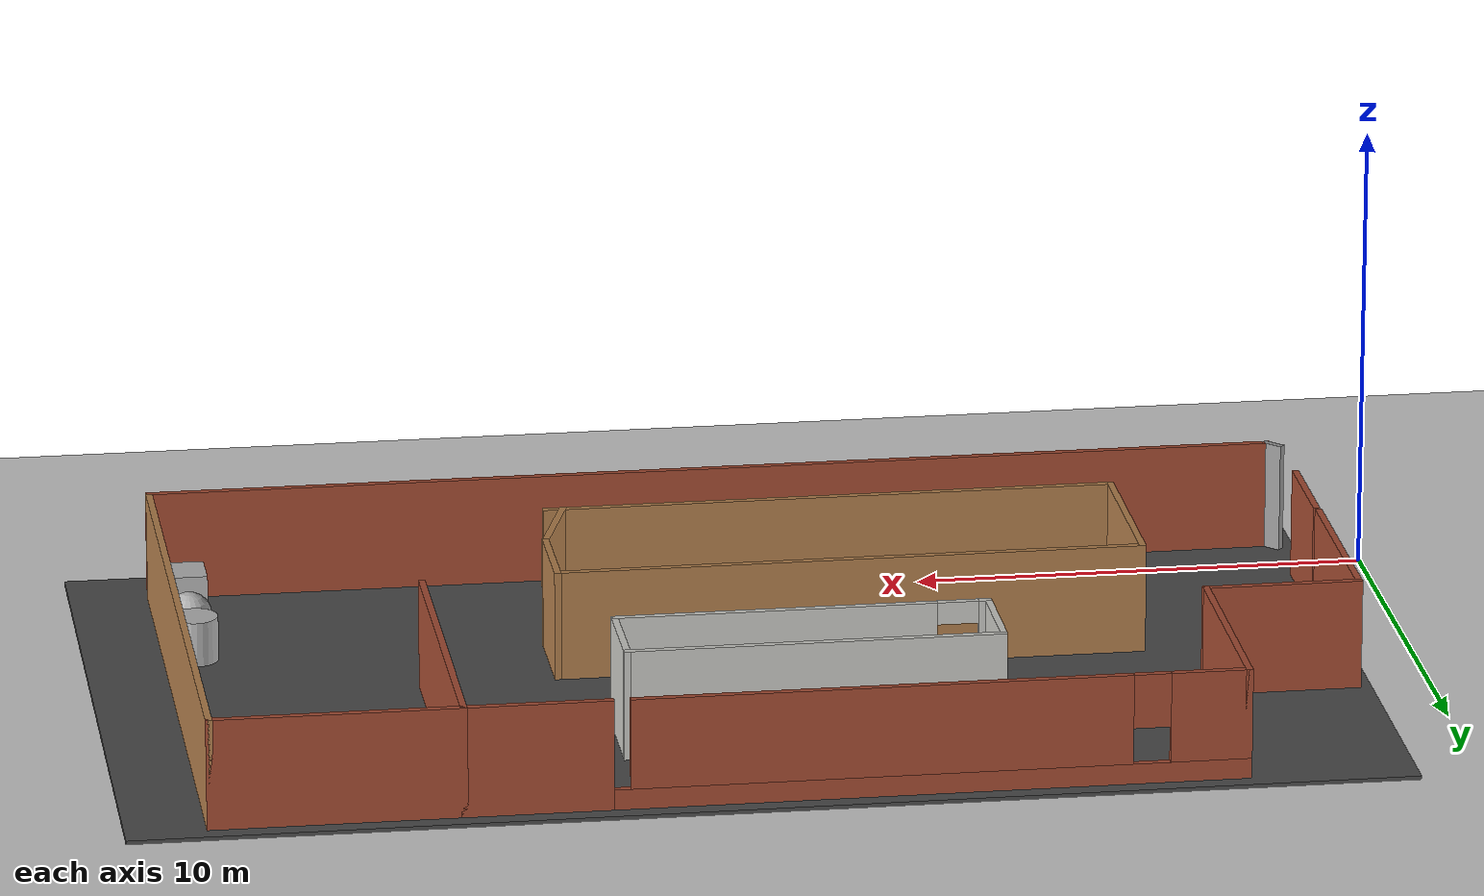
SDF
<sdf version="1.6">
 <world name="default">
  <light name="sun" type="directional">
   <pose>0 0 10 0 -0 0</pose>
   <diffuse>0.8 0.8 0.8 1</diffuse>
   <specular>0.1 0.1 0.1 1</specular>
   <attenuation>
    <range>1000</range>
    <constant>0.9</constant>
    <linear>0.01</linear>
    <quadratic>0.001</quadratic>
   </attenuation>
   <direction>-0.5 0.5 -1</direction>
  </light>
  <model name="ground_plane">
   <static>1</static>
   <link name="link">
    <collision name="collision">
     <geometry><plane><normal>0 0 1</normal><size>100 100</size></plane></geometry>
     <surface><friction><ode><mu>100</mu><mu2>50</mu2></ode></friction></surface>
    </collision>
    <visual name="visual">
     <cast_shadows>0</cast_shadows>
     <geometry><plane><normal>0 0 1</normal><size>100 100</size></plane></geometry>
     <material>
      <script><uri>file://media/materials/scripts/gazebo.material</uri><name>Gazebo/Grey</name></script>
     </material>
    </visual>
   </link>
  </model>
  <gravity>0 0 -9.8</gravity>
  <magnetic_field>6e-06 2.3e-05 -4.2e-05</magnetic_field>
  <atmosphere type="adiabatic"/>
  <physics name="default_physics" default="0" type="ode">
   <max_step_size>0.001</max_step_size>
   <real_time_factor>1</real_time_factor>
   <real_time_update_rate>1000</real_time_update_rate>
  </physics>
  <scene><ambient>0.4 0.4 0.4 1</ambient><background>0.7 0.7 0.7 1</background><shadows>1</shadows></scene>
  <spherical_coordinates>
   <surface_model>EARTH_WGS84</surface_model>
   <latitude_deg>0</latitude_deg>
   <longitude_deg>0</longitude_deg>
   <elevation>0</elevation>
   <heading_deg>0</heading_deg>
  </spherical_coordinates>
  <model name="building1">
   <pose>14.3259 5.95802 0 0 -0 0</pose>
   <link name="Wall_0">
    <collision name="Wall_0_Collision">
     <geometry><box><size>8.25 0.15 2.5</size></box></geometry>
     <pose>0 0 1.25 0 -0 0</pose>
    </collision>
    <visual name="Wall_0_Visual">
     <pose>0 0 1.25 0 -0 0</pose>
     <geometry><box><size>8.25 0.15 2.5</size></box></geometry>
     <material>
      <script><uri>file://media/materials/scripts/gazebo.material</uri><name>Gazebo/CeilingTiled</name></script>
      <ambient>1 1 1 1</ambient>
     </material>
    </visual>
    <pose>-0.524089 4.29418 0 0 -0 3.14159</pose>
   </link>
   <link name="Wall_1">
    <collision name="Wall_1_Collision">
     <geometry><box><size>2.25 0.15 2.5</size></box></geometry>
     <pose>0 0 1.25 0 -0 0</pose>
    </collision>
    <visual name="Wall_1_Visual">
     <pose>0 0 1.25 0 -0 0</pose>
     <geometry><box><size>2.25 0.15 2.5</size></box></geometry>
     <material>
      <script><uri>file://media/materials/scripts/gazebo.material</uri><name>Gazebo/CeilingTiled</name></script>
      <ambient>1 1 1 1</ambient>
     </material>
    </visual>
    <pose>-4.57409 3.24418 0 0 0 -1.5708</pose>
   </link>
   <link name="Wall_10">
    <collision name="Wall_10_Collision">
     <geometry><box><size>3.25 0.15 2.5</size></box></geometry>
     <pose>0 0 1.25 0 -0 0</pose>
    </collision>
    <visual name="Wall_10_Visual">
     <pose>0 0 1.25 0 -0 0</pose>
     <geometry><box><size>3.25 0.15 2.5</size></box></geometry>
     <material>
      <script><uri>file://media/materials/scripts/gazebo.material</uri><name>Gazebo/Bricks</name></script>
      <ambient>1 1 1 1</ambient>
     </material>
    </visual>
    <pose>5.8 7.19053 0 0 -0 0</pose>
   </link>
   <link name="Wall_11">
    <collision name="Wall_11_Collision">
     <geometry><box><size>8 0.15 2.5</size></box></geometry>
     <pose>0 0 1.25 0 -0 0</pose>
    </collision>
    <visual name="Wall_11_Visual">
     <pose>0 0 1.25 0 -0 0</pose>
     <geometry><box><size>8 0.15 2.5</size></box></geometry>
     <material>
      <script><uri>file://media/materials/scripts/gazebo.material</uri><name>Gazebo/Bricks</name></script>
      <ambient>1 1 1 1</ambient>
     </material>
    </visual>
    <pose>7.35 3.26553 0 0 0 -1.5708</pose>
   </link>
   <link name="Wall_13">
    <collision name="Wall_13_Collision">
     <geometry><box><size>13 0.15 2.5</size></box></geometry>
     <pose>0 0 1.25 0 -0 0</pose>
    </collision>
    <visual name="Wall_13_Visual">
     <pose>0 0 1.25 0 -0 0</pose>
     <geometry><box><size>13 0.15 2.5</size></box></geometry>
     <material>
      <script><uri>file://media/materials/scripts/gazebo.material</uri><name>Gazebo/Wood</name></script>
      <ambient>1 1 1 1</ambient>
     </material>
    </visual>
    <pose>-2.03974 -0.810328 0 0 -0 3.14159</pose>
   </link>
   <link name="Wall_14">
    <collision name="Wall_14_Collision">
     <geometry><box><size>4.25 0.15 2.5</size></box></geometry>
     <pose>0 0 1.25 0 -0 0</pose>
    </collision>
    <visual name="Wall_14_Visual">
     <pose>0 0 1.25 0 -0 0</pose>
     <geometry><box><size>4.25 0.15 2.5</size></box></geometry>
     <material>
      <script><uri>file://media/materials/scripts/gazebo.material</uri><name>Gazebo/Wood</name></script>
      <ambient>1 1 1 1</ambient>
     </material>
    </visual>
    <pose>-8.46474 -2.86033 0 0 0 -1.5708</pose>
   </link>
   <link name="Wall_15">
    <collision name="Wall_15_Collision">
     <geometry><box><size>12.75 0.15 2.5</size></box></geometry>
     <pose>0 0 1.25 0 -0 0</pose>
    </collision>
    <visual name="Wall_15_Visual">
     <pose>0 0 1.25 0 -0 0</pose>
     <geometry><box><size>12.75 0.15 2.5</size></box></geometry>
     <material>
      <script><uri>file://media/materials/scripts/gazebo.material</uri><name>Gazebo/Wood</name></script>
      <ambient>1 1 1 1</ambient>
     </material>
    </visual>
    <pose>-2.16474 -4.91033 0 0 -0 0</pose>
   </link>
   <link name="Wall_17">
    <collision name="Wall_17_Collision">
     <geometry><box><size>2.25 0.15 2.5</size></box></geometry>
     <pose>0 0 1.25 0 -0 0</pose>
    </collision>
    <visual name="Wall_17_Visual">
     <pose>0 0 1.25 0 -0 0</pose>
     <geometry><box><size>2.25 0.15 2.5</size></box></geometry>
     <material>
      <script><uri>file://media/materials/scripts/gazebo.material</uri><name>Gazebo/Wood</name></script>
      <ambient>1 1 1 1</ambient>
     </material>
    </visual>
    <pose>4.38526 -1.86033 0 0 0 -1.5708</pose>
   </link>
   <link name="Wall_19">
    <collision name="Wall_19_Collision">
     <geometry><box><size>5.5 0.15 2.5</size></box></geometry>
     <pose>0 0 1.25 0 -0 0</pose>
    </collision>
    <visual name="Wall_19_Visual">
     <pose>0 0 1.25 0 -0 0</pose>
     <geometry><box><size>5.5 0.15 2.5</size></box></geometry>
     <material>
      <script><uri>file://media/materials/scripts/gazebo.material</uri><name>Gazebo/Bricks</name></script>
      <ambient>1 1 1 1</ambient>
     </material>
    </visual>
    <pose>10.025 7.19053 0 0 -0 0</pose>
   </link>
   <link name="Wall_2">
    <pose>-0.524089 2.19418 0 0 -0 0</pose>
    <visual name="Wall_2_Visual_0">
     <pose>-3.98181 0 1.25 0 -0 0</pose>
     <geometry><box><size>0.286391 0.15 2.5</size></box></geometry>
     <material>
      <script><uri>file://media/materials/scripts/gazebo.material</uri><name>Gazebo/CeilingTiled</name></script>
      <ambient>1 1 1 1</ambient>
     </material>
    </visual>
    <collision name="Wall_2_Collision_0">
     <geometry><box><size>0.286391 0.15 2.5</size></box></geometry>
     <pose>-3.98181 0 1.25 0 -0 0</pose>
    </collision>
    <visual name="Wall_2_Visual_1">
     <pose>0.593195 0 1.25 0 -0 0</pose>
     <geometry><box><size>7.06361 0.15 2.5</size></box></geometry>
     <material>
      <script><uri>file://media/materials/scripts/gazebo.material</uri><name>Gazebo/CeilingTiled</name></script>
      <ambient>1 1 1 1</ambient>
     </material>
    </visual>
    <collision name="Wall_2_Collision_1">
     <geometry><box><size>7.06361 0.15 2.5</size></box></geometry>
     <pose>0.593195 0 1.25 0 -0 0</pose>
    </collision>
    <visual name="Wall_2_Visual_2">
     <pose>-3.38861 0 2.25 0 -0 0</pose>
     <geometry><box><size>0.9 0.15 0.5</size></box></geometry>
     <material>
      <script><uri>file://media/materials/scripts/gazebo.material</uri><name>Gazebo/CeilingTiled</name></script>
      <ambient>1 1 1 1</ambient>
     </material>
    </visual>
    <collision name="Wall_2_Collision_2">
     <geometry><box><size>0.9 0.15 0.5</size></box></geometry>
     <pose>-3.38861 0 2.25 0 -0 0</pose>
    </collision>
   </link>
   <link name="Wall_20">
    <collision name="Wall_20_Collision">
     <geometry><box><size>14.5 0.15 2.5</size></box></geometry>
     <pose>0 0 1.25 0 -0 0</pose>
    </collision>
    <visual name="Wall_20_Visual">
     <pose>0 0 1.25 0 -0 0</pose>
     <geometry><box><size>14.5 0.15 2.5</size></box></geometry>
     <material>
      <script><uri>file://media/materials/scripts/gazebo.material</uri><name>Gazebo/Wood</name></script>
      <ambient>1 1 1 1</ambient>
     </material>
    </visual>
    <pose>12.7 0.015532 0 0 0 -1.5708</pose>
   </link>
   <link name="Wall_21">
    <collision name="Wall_21_Collision">
     <geometry><box><size>25.25 0.15 2.5</size></box></geometry>
     <pose>0 0 1.25 0 -0 0</pose>
    </collision>
    <visual name="Wall_21_Visual">
     <pose>0 0 1.25 0 -0 0</pose>
     <geometry><box><size>25.25 0.15 2.5</size></box></geometry>
     <material>
      <script><uri>file://media/materials/scripts/gazebo.material</uri><name>Gazebo/Bricks</name></script>
      <ambient>1 1 1 1</ambient>
     </material>
    </visual>
    <pose>0.15 -7.15947 0 0 -0 3.14159</pose>
   </link>
   <link name="Wall_22">
    <collision name="Wall_22_Collision">
     <geometry><box><size>0.5 0.15 2.5</size></box></geometry>
     <pose>0 0 1.25 0 -0 0</pose>
    </collision>
    <visual name="Wall_22_Visual">
     <pose>0 0 1.25 0 -0 0</pose>
     <geometry><box><size>0.5 0.15 2.5</size></box></geometry>
     <material>
      <script><uri>file://media/materials/scripts/gazebo.material</uri><name>Gazebo/Grey</name></script>
      <ambient>1 1 1 1</ambient>
     </material>
    </visual>
    <pose>-12.5237 -7.03572 0 0 -0 2.35619</pose>
   </link>
   <link name="Wall_24">
    <collision name="Wall_24_Collision">
     <geometry><box><size>2.27104 0.15 2.5</size></box></geometry>
     <pose>0 0 1.25 0 -0 0</pose>
    </collision>
    <visual name="Wall_24_Visual">
     <pose>0 0 1.25 0 -0 0</pose>
     <geometry><box><size>2.27104 0.15 2.5</size></box></geometry>
     <material>
      <script><uri>file://media/materials/scripts/gazebo.material</uri><name>Gazebo/Wood</name></script>
      <ambient>1 1 1 1</ambient>
     </material>
    </visual>
    <pose>4.07181 -3.92347 0 0 -0 1.27075</pose>
   </link>
   <link name="Wall_26">
    <collision name="Wall_26_Collision">
     <geometry><box><size>2.5 0.15 2.5</size></box></geometry>
     <pose>0 0 1.25 0 -0 0</pose>
    </collision>
    <visual name="Wall_26_Visual">
     <pose>0 0 1.25 0 -0 0</pose>
     <geometry><box><size>2.5 0.15 2.5</size></box></geometry>
     <material>
      <script><uri>file://media/materials/scripts/gazebo.material</uri><name>Gazebo/Bricks</name></script>
      <ambient>1 1 1 1</ambient>
     </material>
    </visual>
    <pose>-12.6785 -3.9146 0 0 0 -1.5708</pose>
   </link>
   <link name="Wall_3">
    <collision name="Wall_3_Collision">
     <geometry><box><size>2.25 0.15 2.5</size></box></geometry>
     <pose>0 0 1.25 0 -0 0</pose>
    </collision>
    <visual name="Wall_3_Visual">
     <pose>0 0 1.25 0 -0 0</pose>
     <geometry><box><size>2.25 0.15 2.5</size></box></geometry>
     <material>
      <script><uri>file://media/materials/scripts/gazebo.material</uri><name>Gazebo/CeilingTiled</name></script>
      <ambient>1 1 1 1</ambient>
     </material>
    </visual>
    <pose>3.52591 3.24418 0 0 -0 1.5708</pose>
   </link>
   <link name="Wall_5">
    <pose>-2.55 7.19053 0 0 -0 3.14159</pose>
    <visual name="Wall_5_Visual_0">
     <pose>0 0 0.25 0 -0 0</pose>
     <geometry><box><size>13.75 0.15 0.5</size></box></geometry>
     <material>
      <script><uri>file://media/materials/scripts/gazebo.material</uri><name>Gazebo/Bricks</name></script>
      <ambient>1 1 1 1</ambient>
     </material>
    </visual>
    <collision name="Wall_5_Collision_0">
     <geometry><box><size>13.75 0.15 0.5</size></box></geometry>
     <pose>0 0 0.25 0 -0 0</pose>
    </collision>
    <visual name="Wall_5_Visual_1">
     <pose>-1.02547 0 1.5 0 -0 0</pose>
     <geometry><box><size>10.7019 0.15 2</size></box></geometry>
     <material>
      <script><uri>file://media/materials/scripts/gazebo.material</uri><name>Gazebo/Bricks</name></script>
      <ambient>1 1 1 1</ambient>
     </material>
    </visual>
    <collision name="Wall_5_Collision_1">
     <geometry><box><size>10.7019 0.15 2</size></box></geometry>
     <pose>-1.02547 0 1.5 0 -0 0</pose>
    </collision>
    <visual name="Wall_5_Visual_2">
     <pose>6.00025 0 1.5 0 -0 0</pose>
     <geometry><box><size>1.7495 0.15 2</size></box></geometry>
     <material>
      <script><uri>file://media/materials/scripts/gazebo.material</uri><name>Gazebo/Bricks</name></script>
      <ambient>1 1 1 1</ambient>
     </material>
    </visual>
    <collision name="Wall_5_Collision_2">
     <geometry><box><size>1.7495 0.15 2</size></box></geometry>
     <pose>6.00025 0 1.5 0 -0 0</pose>
    </collision>
    <visual name="Wall_5_Visual_3">
     <pose>4.7255 0 1.9 0 -0 0</pose>
     <geometry><box><size>0.8 0.15 1.2</size></box></geometry>
     <material>
      <script><uri>file://media/materials/scripts/gazebo.material</uri><name>Gazebo/Bricks</name></script>
      <ambient>1 1 1 1</ambient>
     </material>
    </visual>
    <collision name="Wall_5_Collision_3">
     <geometry><box><size>0.8 0.15 1.2</size></box></geometry>
     <pose>4.7255 0 1.9 0 -0 0</pose>
    </collision>
   </link>
   <link name="Wall_6">
    <collision name="Wall_6_Collision">
     <geometry><box><size>5.25 0.15 2.5</size></box></geometry>
     <pose>0 0 1.25 0 -0 0</pose>
    </collision>
    <visual name="Wall_6_Visual">
     <pose>0 0 1.25 0 -0 0</pose>
     <geometry><box><size>5.25 0.15 2.5</size></box></geometry>
     <material>
      <script><uri>file://media/materials/scripts/gazebo.material</uri><name>Gazebo/Bricks</name></script>
      <ambient>1 1 1 1</ambient>
     </material>
    </visual>
    <pose>-9.35 4.64053 0 0 0 -1.5708</pose>
   </link>
   <link name="Wall_7">
    <collision name="Wall_7_Collision">
     <geometry><box><size>3.5 0.15 2.5</size></box></geometry>
     <pose>0 0 1.25 0 -0 0</pose>
    </collision>
    <visual name="Wall_7_Visual">
     <pose>0 0 1.25 0 -0 0</pose>
     <geometry><box><size>3.5 0.15 2.5</size></box></geometry>
     <material>
      <script><uri>file://media/materials/scripts/gazebo.material</uri><name>Gazebo/Bricks</name></script>
      <ambient>1 1 1 1</ambient>
     </material>
    </visual>
    <pose>-11.025 2.09053 0 0 -0 3.14159</pose>
   </link>
   <link name="Wall_8">
    <collision name="Wall_8_Collision">
     <geometry><box><size>4.75 0.15 2.5</size></box></geometry>
     <pose>0 0 1.25 0 -0 0</pose>
    </collision>
    <visual name="Wall_8_Visual">
     <pose>0 0 1.25 0 -0 0</pose>
     <geometry><box><size>4.75 0.15 2.5</size></box></geometry>
     <material>
      <script><uri>file://media/materials/scripts/gazebo.material</uri><name>Gazebo/Bricks</name></script>
      <ambient>1 1 1 1</ambient>
     </material>
    </visual>
    <pose>-12.7 -0.209468 0 0 0 -1.5708</pose>
   </link>
   <static>1</static>
  </model>
  <model name="asphalt_plane">
   <static>1</static>
   <link name="link">
    <collision name="collision"><geometry><box><size>27.5274 16.1336 0.1</size></box></geometry></collision>
    <visual name="visual">
     <cast_shadows>0</cast_shadows>
     <geometry><box><size>27.5274 16.1336 0.1</size></box></geometry>
     <material>
      <script>
       <uri>model://asphalt_plane/materials/scripts</uri>
       <uri>model://asphalt_plane/materials/textures</uri>
       <name>vrc/asphalt</name>
      </script>
     </material>
    </visual>
   </link>
   <pose>15.0698 5.52786 0 0 -0 0</pose>
  </model>
  <model name="textured_shapes">
   <pose>26.3909 1.34146 0.55 0 -0 0</pose>
   <link name="box">
    <pose>0 -1.5 0 0 -0 0</pose>
    <collision name="collision"><geometry><box><size>1 1 1</size></box></geometry></collision>
    <visual name="visual">
     <geometry><box><size>1 1 1</size></box></geometry>
     <material>
      <script>
       <uri>model://textured_shapes/materials/scripts</uri>
       <uri>model://textured_shapes/materials/textures</uri>
       <name>TexturedShape/Squares</name>
      </script>
     </material>
    </visual>
    <inertial>
     <inertia><ixx>1</ixx><ixy>0</ixy><ixz>0</ixz><iyy>1</iyy><iyz>0</iyz><izz>1</izz></inertia>
     <mass>1</mass>
    </inertial>
   </link>
   <link name="sphere">
    <collision name="collision"><geometry><sphere><radius>0.5</radius></sphere></geometry></collision>
    <visual name="visual">
     <geometry><sphere><radius>0.5</radius></sphere></geometry>
     <material>
      <script>
       <uri>model://textured_shapes/materials/scripts</uri>
       <uri>model://textured_shapes/materials/textures</uri>
       <name>TexturedShape/Squares</name>
      </script>
     </material>
    </visual>
    <inertial>
     <inertia><ixx>1</ixx><ixy>0</ixy><ixz>0</ixz><iyy>1</iyy><iyz>0</iyz><izz>1</izz></inertia>
     <mass>1</mass>
    </inertial>
   </link>
   <link name="cylinder">
    <pose>0 1.5 0 0 -0 0</pose>
    <collision name="collision">
     <geometry><cylinder><radius>0.5</radius><length>1</length></cylinder></geometry>
    </collision>
    <visual name="visual">
     <geometry><cylinder><radius>0.5</radius><length>1</length></cylinder></geometry>
     <material>
      <script>
       <uri>model://textured_shapes/materials/scripts</uri>
       <uri>model://textured_shapes/materials/textures</uri>
       <name>TexturedShape/Squares</name>
      </script>
     </material>
    </visual>
    <inertial>
     <inertia><ixx>1</ixx><ixy>0</ixy><ixz>0</ixz><iyy>1</iyy><iyz>0</iyz><izz>1</izz></inertia>
     <mass>1</mass>
    </inertial>
   </link>
  </model>
  <model name="bookshelf">
   <static>1</static>
   <link name="link">
    <inertial><mass>1</mass></inertial>
    <collision name="back">
     <pose>0 0.005 0.6 0 -0 0</pose>
     <geometry><box><size>0.9 0.01 1.2</size></box></geometry>
    </collision>
    <visual name="visual1">
     <pose>0 0.005 0.6 0 -0 0</pose>
     <geometry><box><size>0.9 0.01 1.2</size></box></geometry>
     <material>
      <script><uri>file://media/materials/scripts/gazebo.material</uri><name>Gazebo/Wood</name></script>
     </material>
    </visual>
    <collision name="left_side">
     <pose>0.45 -0.195 0.6 0 -0 0</pose>
     <geometry><box><size>0.02 0.4 1.2</size></box></geometry>
    </collision>
    <visual name="visual2">
     <pose>0.45 -0.195 0.6 0 -0 0</pose>
     <geometry><box><size>0.02 0.4 1.2</size></box></geometry>
     <material>
      <script><uri>file://media/materials/scripts/gazebo.material</uri><name>Gazebo/Wood</name></script>
     </material>
    </visual>
    <collision name="right_side">
     <pose>-0.45 -0.195 0.6 0 -0 0</pose>
     <geometry><box><size>0.02 0.4 1.2</size></box></geometry>
    </collision>
    <visual name="visual3">
     <pose>-0.45 -0.195 0.6 0 -0 0</pose>
     <geometry><box><size>0.02 0.4 1.2</size></box></geometry>
     <material>
      <script><uri>file://media/materials/scripts/gazebo.material</uri><name>Gazebo/Wood</name></script>
     </material>
    </visual>
    <collision name="bottom">
     <pose>0 -0.195 0.03 0 -0 0</pose>
     <geometry><box><size>0.88 0.4 0.06</size></box></geometry>
    </collision>
    <visual name="visual4">
     <pose>0 -0.195 0.03 0 -0 0</pose>
     <geometry><box><size>0.88 0.4 0.06</size></box></geometry>
     <material>
      <script><uri>file://media/materials/scripts/gazebo.material</uri><name>Gazebo/Wood</name></script>
     </material>
    </visual>
    <collision name="top">
     <pose>0 -0.195 1.19 0 -0 0</pose>
     <geometry><box><size>0.88 0.4 0.02</size></box></geometry>
    </collision>
    <visual name="visual5">
     <pose>0 -0.195 1.19 0 -0 0</pose>
     <geometry><box><size>0.88 0.4 0.02</size></box></geometry>
     <material>
      <script><uri>file://media/materials/scripts/gazebo.material</uri><name>Gazebo/Wood</name></script>
     </material>
    </visual>
    <collision name="low_shelf">
     <pose>0 -0.195 0.43 0 -0 0</pose>
     <geometry><box><size>0.88 0.4 0.02</size></box></geometry>
    </collision>
    <visual name="visual6">
     <pose>0 -0.195 0.43 0 -0 0</pose>
     <geometry><box><size>0.88 0.4 0.02</size></box></geometry>
     <material>
      <script><uri>file://media/materials/scripts/gazebo.material</uri><name>Gazebo/Wood</name></script>
     </material>
    </visual>
    <collision name="high_shelf">
     <pose>0 -0.195 0.8 0 -0 0</pose>
     <geometry><box><size>0.88 0.4 0.02</size></box></geometry>
    </collision>
    <visual name="visual7">
     <pose>0 -0.195 0.8 0 -0 0</pose>
     <geometry><box><size>0.88 0.4 0.02</size></box></geometry>
     <material>
      <script><uri>file://media/materials/scripts/gazebo.material</uri><name>Gazebo/Wood</name></script>
     </material>
    </visual>
   </link>
   <pose>21.1426 13.0679 0 0 -0 0</pose>
  </model>
 </world>
</sdf>
